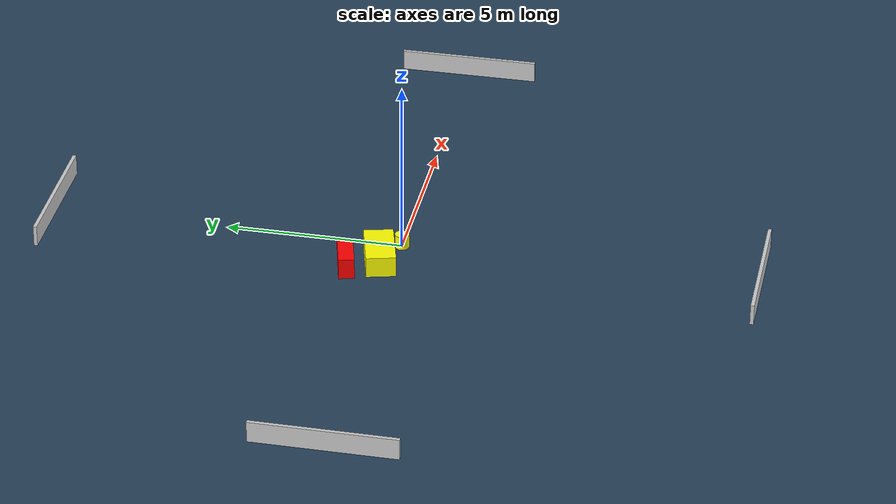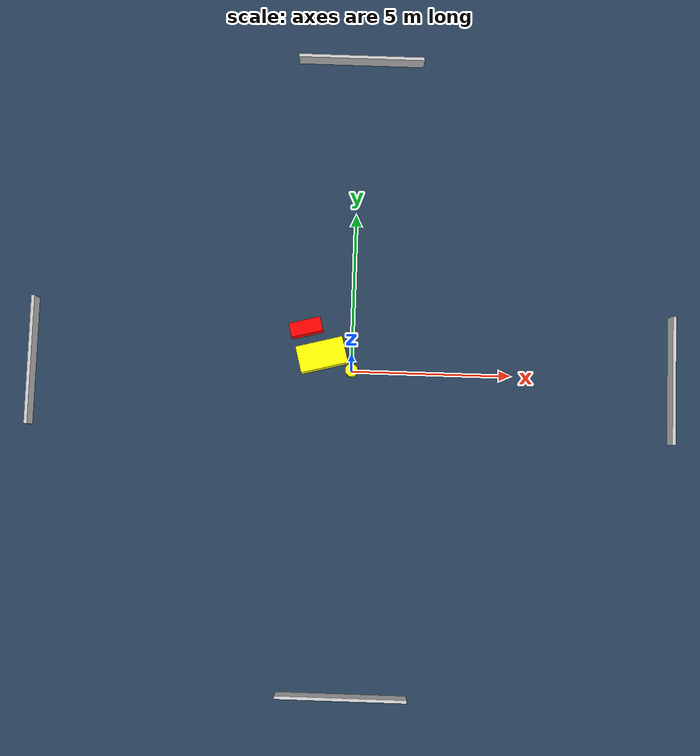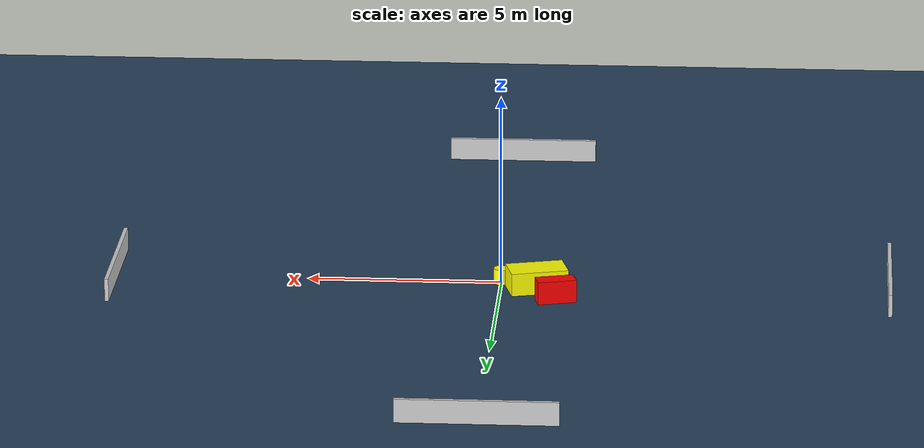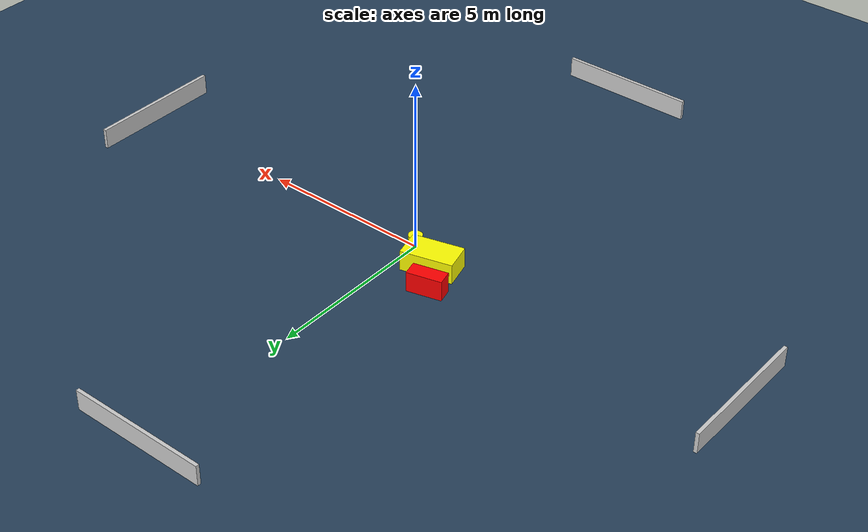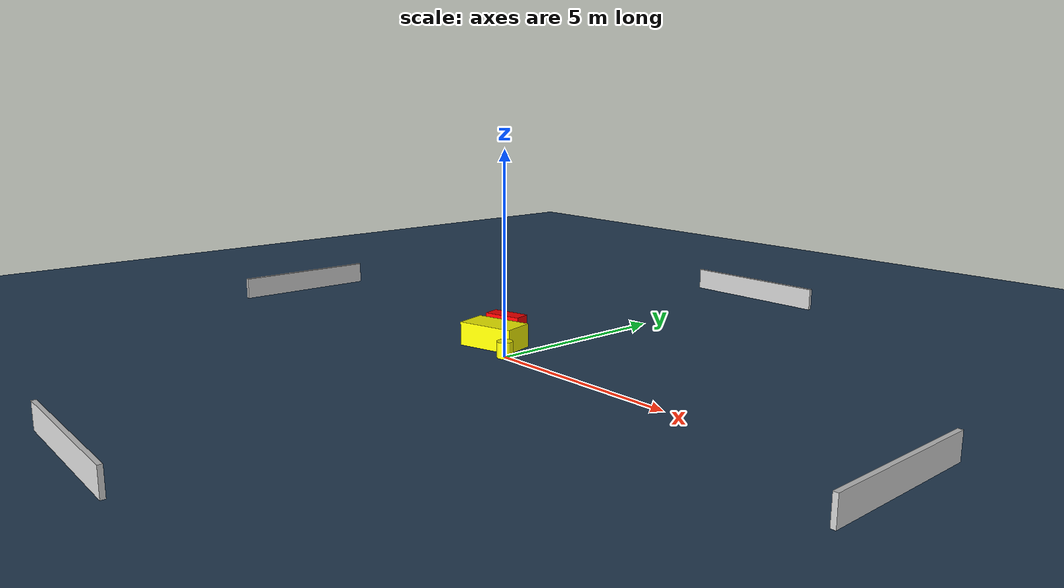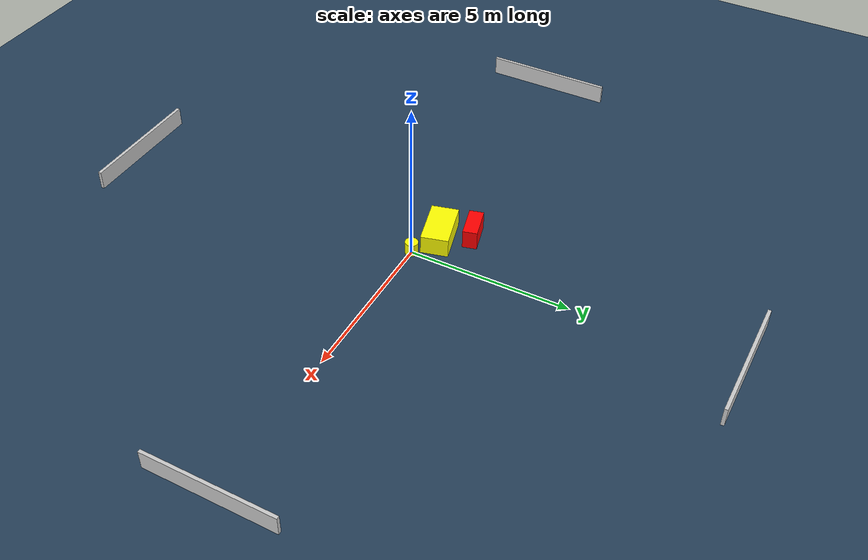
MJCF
<?xml version="1.0" ?>
<mujoco model="generated_environment">
  <option timestep="0.01" integrator="RK4" cone="elliptic"/>
  <default>
    <geom density="1"/>
  </default>
  <asset>
    <texture builtin="gradient" height="3072" name="skybox" rgb1="0.3 0.5 0.7" rgb2="0 0 0" type="skybox" width="512"/>
    <texture builtin="checker" height="300" name="groundplane" rgb1="0.2 0.3 0.4" rgb2="0.1 0.2 0.3" type="2d" width="300"/>
    <material name="groundplane" reflectance="0.2" texrepeat="5 5" texture="groundplane"/>
  </asset>
  <worldbody>
    <light dir="0 0 -1" directional="true" pos="0 0 1.5"/>
    <geom condim="3" friction="0.5 0.005 0.001" material="groundplane" name="floor" pos="0 0 0" size="0 0 0.05" type="plane"/>
    <body name="walls">
      <geom name="wall_1" condim="4" pos="-10.0 0.0 0.3" rgba="0.800000011920929 0.800000011920929 0.800000011920929 1.0" size="0.05 2.0 0.3" type="box"/>
      <geom name="wall_2" condim="4" pos="10.0 0.0 0.3" rgba="0.800000011920929 0.800000011920929 0.800000011920929 1.0" size="0.05 2.0 0.3" type="box"/>
      <geom name="wall_3" condim="4" pos="0.0 -10.0 0.3" rgba="0.800000011920929 0.800000011920929 0.800000011920929 1.0" size="2.0 0.05 0.3" type="box"/>
      <geom name="wall_4" condim="4" pos="0.0 10.0 0.3" rgba="0.800000011920929 0.800000011920929 0.800000011920929 1.0" size="2.0 0.05 0.3" type="box"/>
    </body>
    <body name="robot">
      <joint name="joint_x" type="slide" pos="0 0 0" axis="1 0 0"/>
      <joint name="joint_y" type="slide" pos="0 0 0" axis="0 1 0"/>
      <geom name="robot" type="cylinder" pos="0.0 0.0 0.2" size="0.2 0.2 0.0" mass="5.0" friction="1.0 0.005 0.0001" condim="4" rgba="1.0 1.0 0.0 1.0"/>
    </body>
    <body name="obstacle_1_movable">
      <geom name="obstacle_1_movable" condim="4" pos="-0.9392013485426832 0.44090074845201754 0.3" euler="0 0 284.70482190849896" friction="0.0 0.005 0.001" rgba="1.0 1.0 0.0 1.0" size="0.41746555670944985 0.7468758150968755 0.3" type="box" mass="0.1"/>
      <joint type="free"/>
    </body>
    <body name="obstacle_2_static">
      <geom name="obstacle_2_static" condim="4" pos="-1.4612628596193007 1.286497926203049 0.3" euler="0 0 104.49313850340988" friction="0.0 0.005 0.001" rgba="1.0 0.0 0.0 1.0" size="0.22051620231061964 0.501391400453902 0.3" type="box"/>
    </body>
  </worldbody>
  <actuator>
    <motor name="actuator_x" joint="joint_x" gear="1" ctrlrange="-1 1"/>
    <motor name="actuator_y" joint="joint_y" gear="1" ctrlrange="-1 1"/>
  </actuator>
</mujoco>
